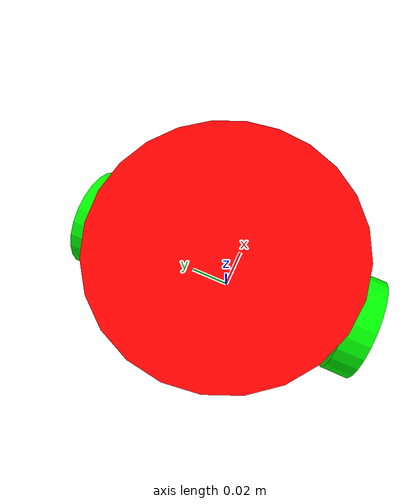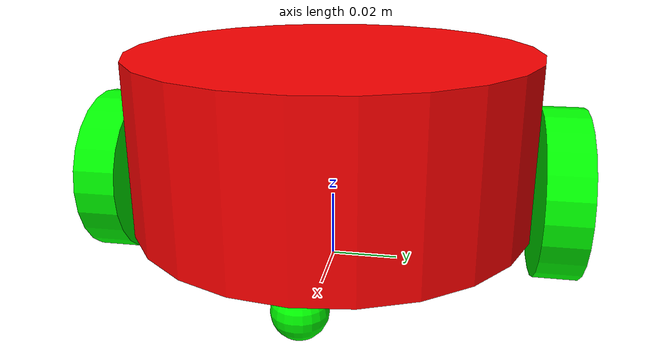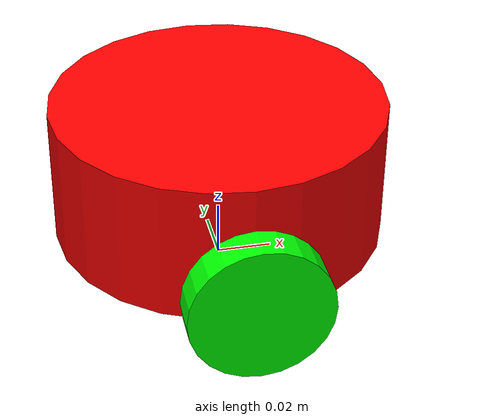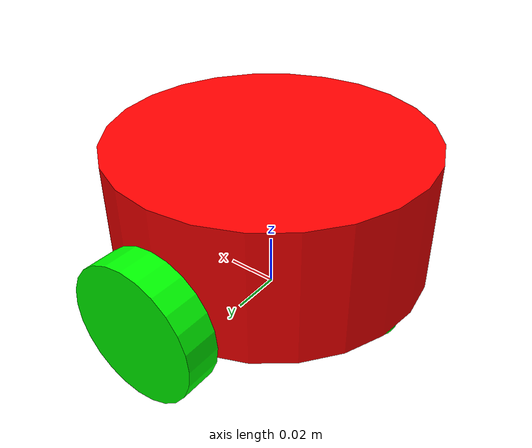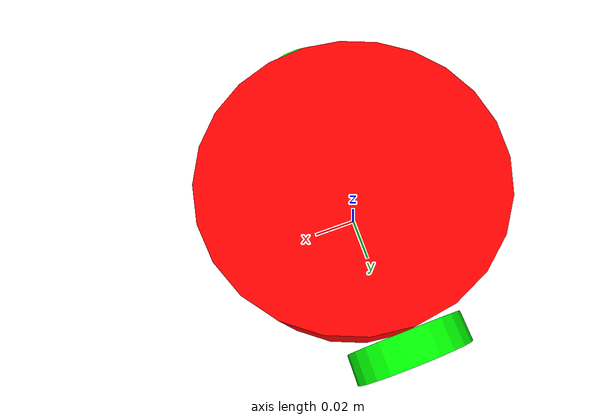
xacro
<robot name="mycar" xmlns:xacro="http://wiki.ros.org/xacro">
    <!--1.添加base_footprint-->
    <xacro:property name="footprint_radius" value="0.001" />

    <link name="base_footprint">
        <visual>
            <geometry>
                <sphere radius="${footprint_radius}" />
            </geometry>
        </visual>
    </link>

    <!--2.添加底盘base_link-->
    <!--形状：圆柱体 半径：0.06m 高度：0.05m 离地距离：0.015m-->
    <xacro:property name="base_radius" value="0.06" />
    <xacro:property name="base_length" value="0.05" />
    <xacro:property name="base_mass" value="5" />
    <xacro:property name="lidi" value="0.015" />
    <xacro:property name="base_joint_z" value="${base_length/2+lidi}" />

    <!--2.1 link-->
    <link name="base_link">
        <visual>
            <geometry>
                <cylinder radius="${base_radius}" length="${base_length}" />
            </geometry>

            <origin xyz="0 0 0" rpy="0 0 0" />

            <material name="baselink_color">
                <color rgba="1 0 0 1" />
            </material>
        </visual>

        <collision>
            <geometry>
                <cylinder radius="${base_radius}" length="${base_length}" />
            </geometry>

            <origin xyz="0 0 0" rpy="0 0 0" />
        </collision>
        <!--调用惯性矩阵函数,包含在head.xacro中-->
        <xacro:cylinder_inertial_matrix m="${base_mass}" r="${base_radius}" h="${base_length}" />
    </link>

    <!--gazebo需要单独设置颜色-->
    <gazebo reference="base_link">
        <material>Gazebo/Red</material>
    </gazebo>

    <!--2.2 joint-->
    <joint name="link2footprint" type="fixed">
        <parent link="base_footprint" />
        <child link="base_link" />
        <origin xyz="0 0 ${base_joint_z}" rpy="0 0 0" />
    </joint>

    <!--3.添加左右驱动轮-->
    <!--形状：圆柱 半径：0.025m 长度：0.0125m-->
    <xacro:property name="wheel_radius" value="0.025" />
    <xacro:property name="wheel_length" value="0.0125" />
    <xacro:property name="wheel_mass" value="1.0" />
    <xacro:property name="PI" value="3.14159265359" />
    <!--y轴上的偏移量=车体半径+车轮长度/2  目的是防止车轮与车体重叠  -->
    <xacro:property name="wheel_joint_y" value="${base_radius+wheel_length/2}" />
    <xacro:property name="wheel_joint_z" value="${-1*(base_joint_z-wheel_radius)}" />
    <!--
        wheel_name:left right
        flag:left==>1 right==>-1
    -->
    <xacro:macro name="wheel_func" params="wheel_name flag">
        <!--3.1 link-->
        <link name="${wheel_name}_wheel">
            <visual>
                <geometry>
                    <cylinder radius="${wheel_radius}" length="${wheel_length}" />
                </geometry>
                <!--  车轮需要竖起来，即沿着x轴旋转PI/2  -->
                <origin xyz="0 0 0" rpy="${PI/2} 0 0" />

                <material name="wheel_color">
                    <color rgba="0 1 0 1" />
                </material>
            </visual>
            <collision>
                <geometry>
                    <cylinder radius="${wheel_radius}" length="${wheel_length}" />
                </geometry>

                <origin xyz="0 0 0" rpy="${PI/2} 0 0" />
            </collision>

            <!--调用惯性矩阵函数-->
            <xacro:cylinder_inertial_matrix m="${wheel_mass}" r="${wheel_radius}" h="${wheel_length}" />
        </link>

        <!--gazebo需要单独设置颜色-->
        <gazebo reference="${wheel_name}_wheel">
            <material>Gazebo/Green</material>
        </gazebo>

        <!--3.2 joint-->
        <joint name="${wheel_name}2link" type="continuous">
            <parent link="base_link" />
            <child link="${wheel_name}_wheel" />
            <origin xyz="0 ${wheel_joint_y*flag} ${wheel_joint_z}" rpy="0 0 0" />
            <!--轮子沿着y轴转-->
            <axis xyz="0 1 0" />
        </joint>

    </xacro:macro>
    <!--调用宏，生成左右两侧驱动轮-->
    <xacro:wheel_func wheel_name="left" flag="1" />
    <xacro:wheel_func wheel_name="right" flag="-1" />

    <!--4.添加万向轮-->
    <!--形状：球 半径：0.0075m-->
    <xacro:property name="small_wheel_radius" value="0.0075" />
    <xacro:property name="small_wheel_mass" value="0.2" />
    <xacro:property name="small_joint_x" value="${0.8*base_radius}" />
    <xacro:property name="small_joint_z" value="${-1*(base_joint_z-small_wheel_radius)}" />

    <xacro:macro name="small_wheel_func" params="small_wheel_name flag">
        <!--4.1 link-->
        <link name="${small_wheel_name}_wheel">
            <visual>
                <geometry>
                    <sphere radius="${small_wheel_radius}" />
                </geometry>

                <origin xyz="0 0 0" rpy="0 0 0" />

                <material name="wheel_color">
                    <color rgba="0 1 0 1" />
                </material>
            </visual>

            <collision>
                <geometry>
                    <sphere radius="${small_wheel_radius}" />
                </geometry>

                <origin xyz="0 0 0" rpy="0 0 0" />
            </collision>

            <!--调用惯性矩阵函数-->
            <xacro:sphere_inertial_matrix m="${small_wheel_mass}" r="${small_wheel_radius}"/>
        </link>

        <!--gazebo需要单独设置颜色-->
        <gazebo reference="${small_wheel_name}_wheel">
            <material>Gazebo/Green</material>
        </gazebo>

        <!--4.2 joint-->
        <joint name="${small_wheel_name}2link" type="continuous">
            <parent link="base_link" />
            <child link="${small_wheel_name}_wheel" />
            <origin xyz="${small_joint_x*flag} 0 ${small_joint_z}" rpy="0 0 0" />
            <!--轮子沿着y轴转-->
            <axis xyz="0 1 0" />
        </joint>
    </xacro:macro>

    <xacro:small_wheel_func small_wheel_name="front" flag="1" />
    <xacro:small_wheel_func small_wheel_name="back" flag="-1" />

</robot>
